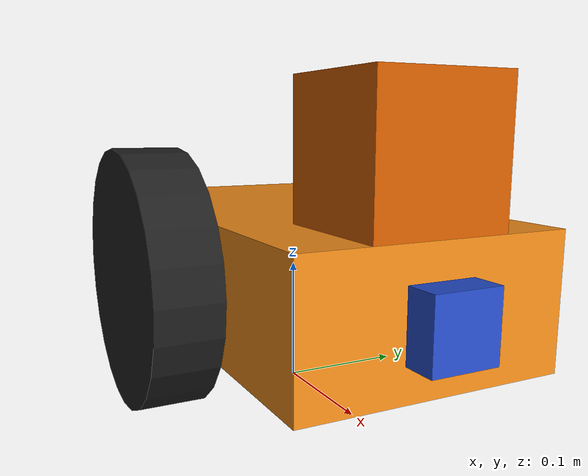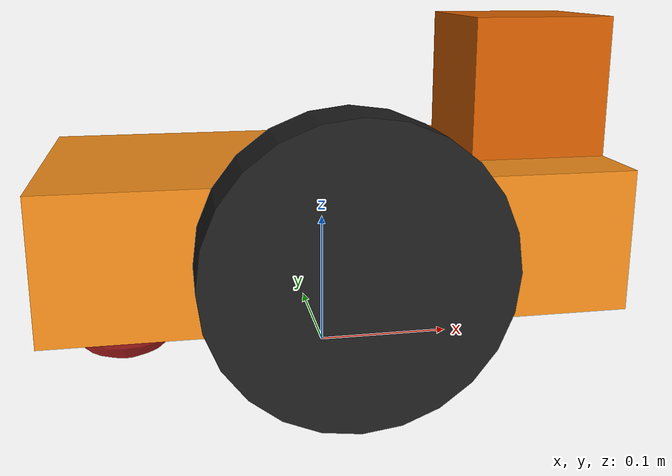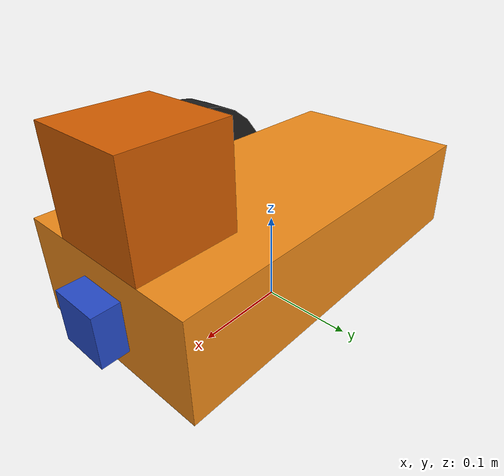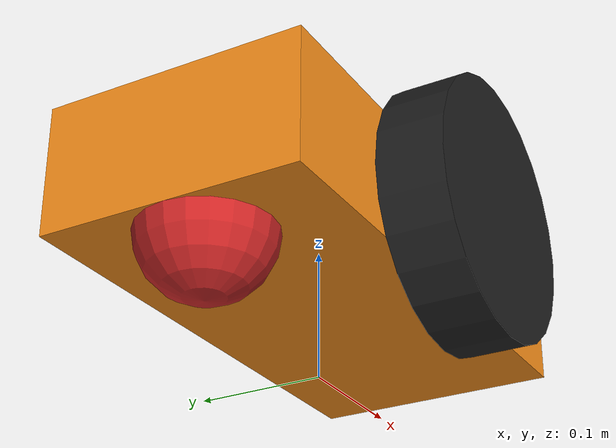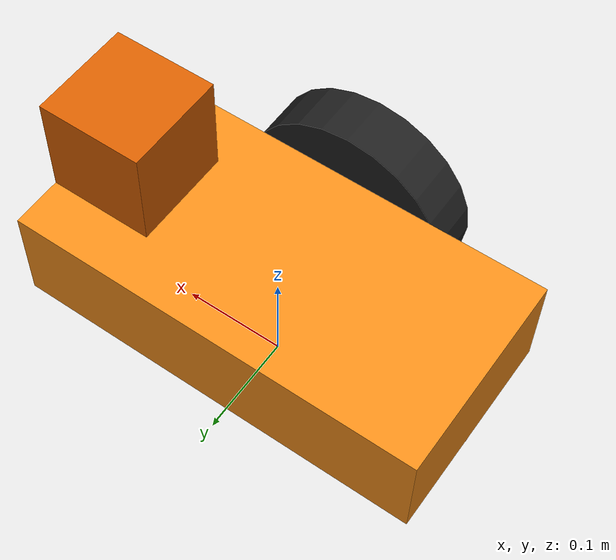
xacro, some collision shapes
<?xml version="1.0"?>
<robot name="mybot2" xmlns:xacro="http://www.ros.org/wiki/xacro">
        <!-- Put here the robot description -->

<xacro:property name="PI" value="3.1415926535897931"/>

<xacro:property name="chassisHeight" value="0.1"/>
<xacro:property name="chassisLength" value="0.4"/>
<xacro:property name="chassisWidth" value="0.2"/>
<xacro:property name="chassisMass" value="50"/>

<xacro:property name="casterRadius" value="0.05"/>
<xacro:property name="casterMass" value="5"/>

<xacro:property name="wheelWidth" value="0.05"/>
<xacro:property name="wheelRadius" value="0.1"/>
<xacro:property name="wheelPos" value="0.2"/>
<xacro:property name="wheelMass" value="5"/>

<xacro:property name="cameraSize" value="0.05"/>
<xacro:property name="cameraMass" value="0.1"/>
<xacro:property name="tY" value="-1"/>
<xacro:property name="lY" value="-1"/>

 <xacro:include filename="$(find mybot_description)/urdf/materials.xacro" />
 <xacro:include filename="$(find mybot_description)/urdf/macros.xacro" />

<link name='chassis2'>
  <collision>
    <origin xyz="0 0 ${wheelRadius}" rpy="0 0 0"/>
    <geometry>
      <box size="${chassisLength} ${chassisWidth} ${chassisHeight}"/>
    </geometry>
  </collision>
  <visual>
    <origin xyz="0 0 ${wheelRadius}" rpy="0 0 0"/>
    <geometry>
      <box size="${chassisLength} ${chassisWidth} ${chassisHeight}"/>
    </geometry>
    <material name="orange"/>
  </visual>
  <inertial>
    <origin xyz="0 0 ${wheelRadius}" rpy="0 0 0"/>
    <mass value="${chassisMass}"/>
    <box_inertia m="${chassisMass}" x="${chassisLength}" y="${chassisWidth}" z="${chassisHeight}"/>
  </inertial>
</link>

<joint name="fixed" type="fixed">
  <parent link="chassis2"/>
  <child link="caster_wheel2"/>
</joint>

<link name="caster_wheel2">
  <collision>
    <origin xyz="${casterRadius-chassisLength/2} 0 ${casterRadius-chassisHeight+wheelRadius}" rpy="0 0 0"/>
    <geometry>
      <sphere radius="${casterRadius}"/>
    </geometry>
  </collision>

  <visual>
    <origin xyz="${casterRadius-chassisLength/2} 0 ${casterRadius-chassisHeight+wheelRadius}" rpy="0 0 0"/>
    <geometry>
      <sphere radius="${casterRadius}"/>
    </geometry>
    <material name="red"/>
  </visual>

  <inertial>
    <origin xyz="${casterRadius-chassisLength/2} 0 ${casterRadius-chassisHeight+wheelRadius}" rpy="0 0 0"/>
    <mass value="${casterMass}"/>
    <sphere_inertia m="${casterMass}" r="${casterRadius}"/>
  </inertial>
</link>

    <link name="left2_wheel">
      <collision>
        <origin xyz="0 0 0" rpy="0 ${PI/2} ${PI/2}" />
        <geometry>
          <cylinder length="${wheelWidth}" radius="${wheelRadius}"/>
        </geometry>
      </collision>

      <visual>
        <origin xyz="0 0 0" rpy="0 ${PI/2} ${PI/2}" />
        <geometry>
          <cylinder length="${wheelWidth}" radius="${wheelRadius}"/>
        </geometry>
        <material name="black"/>
      </visual>

      <inertial>
        <origin xyz="0 0 0" rpy="0 ${PI/2} ${PI/2}" />
        <mass value="${wheelMass}"/>
        <cylinder_inertia m="${wheelMass}" r="${wheelRadius}" h="${wheelWidth}"/>
      </inertial>
    </link>

    <gazebo reference="left2_wheel">
      <mu1 value="1.0"/>
      <mu2 value="1.0"/>
      <kp  value="10000000.0" />
      <kd  value="1.0" />
      <fdir1 value="1 0 0"/>
      <material>Gazebo/Black</material>
    </gazebo>

    <joint name="left2_wheel_hinge" type="continuous">
      <parent link="chassis2"/>
      <child link="left2_wheel"/>
    <origin xyz="${-wheelPos+chassisLength/2} ${lY*wheelWidth/2+lY*chassisWidth/2} ${wheelRadius}" rpy="0 0 0" />
      <axis xyz="0 1 0" rpy="0 0 0" />
      <limit effort="10000" velocity="10000"/>
      <joint_properties damping="0.0" friction="0.0"/>
    </joint>

    <transmission name="left2_trans">
      <type>transmission_interface/SimpleTransmission</type>
      <joint name="left2_wheel_hinge">
        <hardwareInterface>EffortJointInterface</hardwareInterface>
      </joint>
      <actuator name="left2Motor">
        <hardwareInterface>EffortJointInterface</hardwareInterface>
        <mechanicalReduction>10</mechanicalReduction>
      </actuator>
    </transmission>

    <link name="right2_wheel">
      <collision>
        <origin xyz="0 0 0" rpy="0 ${PI/2} ${PI/2}" />
        <geometry>
          <cylinder length="${wheelWidth}" radius="${wheelRadius}"/>
        </geometry>
      </collision>

      <visual>
        <origin xyz="0 0 0" rpy="0 ${PI/2} ${PI/2}" />
        <geometry>
          <cylinder length="${wheelWidth}" radius="${wheelRadius}"/>
        </geometry>
        <material name="black"/>
      </visual>

      <inertial>
        <origin xyz="0 0 0" rpy="0 ${PI/2} ${PI/2}" />
        <mass value="${wheelMass}"/>
        <cylinder_inertia m="${wheelMass}" r="${wheelRadius}" h="${wheelWidth}"/>
      </inertial>
    </link>

    <gazebo reference="right2_wheel">
      <mu1 value="1.0"/>
      <mu2 value="1.0"/>
      <kp  value="10000000.0" />
      <kd  value="1.0" />
      <fdir1 value="1 0 0"/>
      <material>Gazebo/Black</material>
    </gazebo>

    <joint name="right2_wheel_hinge" type="continuous">
      <parent link="chassis2"/>
      <child link="right2_wheel"/>
    <origin xyz="${-wheelPos+chassisLength/2} ${tY*wheelWidth/2+tY*chassisWidth/2} ${wheelRadius}" rpy="0 0 0" />
      <axis xyz="0 1 0" rpy="0 0 0" />
      <limit effort="10000" velocity="10000"/>
      <joint_properties damping="0.0" friction="0.0"/>
    </joint>

    <transmission name="right2_trans">
      <type>transmission_interface/SimpleTransmission</type>
      <joint name="right2_wheel_hinge">
        <hardwareInterface>EffortJointInterface</hardwareInterface>
      </joint>
      <actuator name="right2Motor">
        <hardwareInterface>EffortJointInterface</hardwareInterface>
        <mechanicalReduction>10</mechanicalReduction>
      </actuator>
    </transmission>

<link name="camera2">
  <collision>
    <origin xyz="0 0 ${wheelRadius}" rpy="0 0 0"/>
    <geometry>
      <box size="${cameraSize} ${cameraSize} ${cameraSize}"/>
    </geometry>
  </collision>

  <visual>
    <origin xyz="0 0 ${wheelRadius}" rpy="0 0 0"/>
    <geometry>
      <box size="${cameraSize} ${cameraSize} ${cameraSize}"/>
    </geometry>
    <material name="blue"/>
  </visual>

  <inertial>
    <mass value="${cameraMass}" />
    <origin xyz="0 0 0" rpy="0 0 0"/>
    <box_inertia m="${cameraMass}" x="${cameraSize}" y="${cameraSize}" z="${cameraSize}" />
  </inertial>
</link>

  <joint name="camera_joint2" type="fixed">
    <axis xyz="0 1 0" />
    <origin xyz="0.2 0 0" rpy="0 0 0"/>
    <parent link="chassis2"/>
    <child link="camera2"/>
  </joint>

  <!-- Hokuyo Laser -->
  <link name="hokuyo2">
    <collision>
      <origin xyz="0 0 ${wheelRadius}" rpy="0 0 0"/>
      <geometry>
    <box size="0.1 0.1 0.1"/>
      </geometry>
    </collision>

    <visual>
      <origin xyz="0 0 ${wheelRadius}" rpy="0 0 0"/>
      <geometry>
        <mesh filename="package://mybot_description/meshes/hokuyo.dae"/>
      </geometry>
    </visual>

    <inertial>
      <mass value="1e-5" />
      <origin xyz="0 0 0" rpy="0 0 0"/>
      <inertia ixx="1e-6" ixy="0" ixz="0" iyy="1e-6" iyz="0" izz="1e-6" />
    </inertial>
</link>

  <joint name="hokuyo_joint2" type="fixed">
    <axis xyz="0 1 0" />
    <origin xyz="0.15 0 .1" rpy="0 0 0"/>
    <parent link="chassis2"/>
    <child link="hokuyo2"/>
  </joint>

  <gazebo>
    <plugin name="differential_drive_controller" filename="libgazebo_ros_diff_drive.so">
      <legacyMode>false</legacyMode>
      <alwaysOn>true</alwaysOn>
      <updateRate>20</updateRate>
      <leftJoint>left2_wheel_hinge</leftJoint>
      <rightJoint>right2_wheel_hinge</rightJoint>
      <wheelSeparation>0.4</wheelSeparation>
      <wheelDiameter>0.1</wheelDiameter>
      <torque>20</torque>
      <commandTopic>cmd_vel2</commandTopic>
      <odometryTopic>odom2</odometryTopic>
      <odometryFrame>odom</odometryFrame>
      <robotBaseFrame>chassis2</robotBaseFrame>
    </plugin>
  </gazebo>

  <gazebo reference="chassis2">
      <material>Gazebo/Orange</material>
    </gazebo>

  <gazebo reference="caster_wheel2">
    <mu1>0.0</mu1>
    <mu2>0.0</mu2>
    <material>Gazebo/Red</material>
  </gazebo>

  <gazebo reference="camera2">
    <material>Gazebo/Green</material>
    <sensor type="camera" name="camera1">
      <update_rate>30.0</update_rate>
      <camera name="head2">
        <horizontal_fov>1.3962634</horizontal_fov>
        <image>
          <width>800</width>
          <height>800</height>
          <format>R8G8B8</format>
        </image>
        <clip>
          <near>0.02</near>
          <far>300</far>
        </clip>
      </camera>
      <plugin name="camera_controller" filename="libgazebo_ros_camera.so">
        <alwaysOn>true</alwaysOn>
        <updateRate>0.0</updateRate>
        <cameraName>mybot/camera2</cameraName>
        <imageTopicName>image_raw2</imageTopicName>
        <cameraInfoTopicName>camera_info2</cameraInfoTopicName>
        <frameName>camera2</frameName>
        <hackBaseline>0.07</hackBaseline>
        <distortionK1>0.0</distortionK1>
        <distortionK2>0.0</distortionK2>
        <distortionK3>0.0</distortionK3>
        <distortionT1>0.0</distortionT1>
        <distortionT2>0.0</distortionT2>
      </plugin>
    </sensor>
  </gazebo>

   <!-- hokuyo -->
  <gazebo reference="hokuyo2">
    <sensor type="ray" name="head_hokuyo_sensor">
      <pose>0 0 0 0 0 0</pose>
      <visualize>true</visualize>
      <update_rate>40</update_rate>
      <ray>
        <scan>
          <horizontal>
            <samples>720</samples>
            <resolution>1</resolution>
            <min_angle>-1.570796</min_angle>
            <max_angle>1.570796</max_angle>
          </horizontal>
        </scan>
        <range>
          <min>0.10</min>
          <max>30.0</max>
          <resolution>0.01</resolution>
        </range>
        <noise>
          <type>gaussian</type>
          <mean>0.0</mean>
          <stddev>0.01</stddev>
        </noise>
      </ray>
      <plugin name="gazebo_ros_head_hokuyo_controller" filename="libgazebo_ros_laser.so">
        <topicName>/mybot/laser/scan2</topicName>
        <frameName>hokuyo2</frameName>
      </plugin>
    </sensor>
</gazebo>

</robot>

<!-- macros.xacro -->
<robot>
  <macro name="cylinder_inertia" params="m r h">
    <inertia  ixx="${m*(3*r*r+h*h)/12}" ixy = "0" ixz = "0"
      iyy="${m*(3*r*r+h*h)/12}" iyz = "0"
      izz="${m*r*r/2}"
    />
  </macro>

  <macro name="box_inertia" params="m x y z">
    <inertia  ixx="${m*(y*y+z*z)/12}" ixy = "0" ixz = "0"
      iyy="${m*(x*x+z*z)/12}" iyz = "0"
      izz="${m*(x*x+z*z)/12}"
    />
  </macro>

  <macro name="sphere_inertia" params="m r">
    <inertia  ixx="${2*m*r*r/5}" ixy = "0" ixz = "0"
      iyy="${2*m*r*r/5}" iyz = "0"
      izz="${2*m*r*r/5}"
    />
  </macro>

  <macro name="wheel" params="lr tY">

    <link name="${lr}_wheel">
      <collision>
        <origin xyz="0 0 0" rpy="0 ${PI/2} ${PI/2}" />
        <geometry>
          <cylinder length="${wheelWidth}" radius="${wheelRadius}"/>
        </geometry>
      </collision>

      <visual>
        <origin xyz="0 0 0" rpy="0 ${PI/2} ${PI/2}" />
        <geometry>
          <cylinder length="${wheelWidth}" radius="${wheelRadius}"/>
        </geometry>
        <material name="black"/>
      </visual>

      <inertial>
        <origin xyz="0 0 0" rpy="0 ${PI/2} ${PI/2}" />
        <mass value="${wheelMass}"/>
        <cylinder_inertia m="${wheelMass}" r="${wheelRadius}" h="${wheelWidth}"/>
      </inertial>
    </link>

    <gazebo reference="${lr}_wheel">
      <mu1 value="1.0"/>
      <mu2 value="1.0"/>
      <kp  value="10000000.0" />
      <kd  value="1.0" />
      <fdir1 value="1 0 0"/>
      <material>Gazebo/Black</material>
    </gazebo>

    <joint name="${lr}_wheel_hinge" type="continuous">
      <parent link="chassis"/>
      <child link="${lr}_wheel"/>
    <origin xyz="${-wheelPos+chassisLength/2} ${tY*wheelWidth/2+tY*chassisWidth/2} ${wheelRadius}" rpy="0 0 0" />
      <axis xyz="0 1 0" rpy="0 0 0" />
      <limit effort="10000" velocity="10000"/>
      <joint_properties damping="0.0" friction="0.0"/>
    </joint>

    <transmission name="${lr}_trans">
      <type>transmission_interface/SimpleTransmission</type>
      <joint name="${lr}_wheel_hinge">
        <hardwareInterface>EffortJointInterface</hardwareInterface>
      </joint>
      <actuator name="${lr}Motor">
        <hardwareInterface>EffortJointInterface</hardwareInterface>
        <mechanicalReduction>10</mechanicalReduction>
      </actuator>
    </transmission>

  </macro>

</robot>
